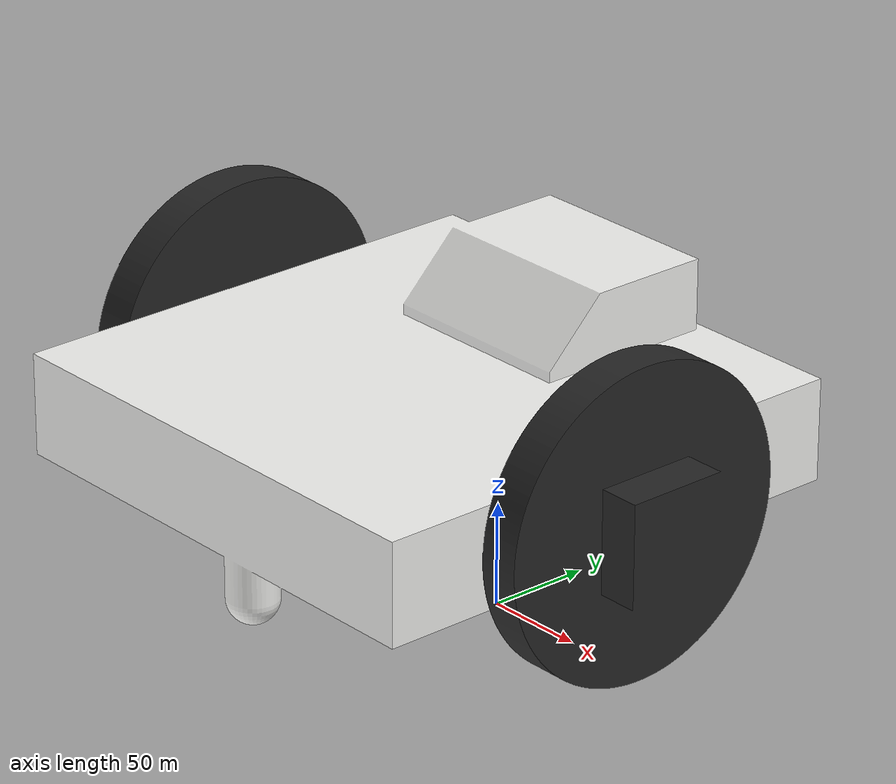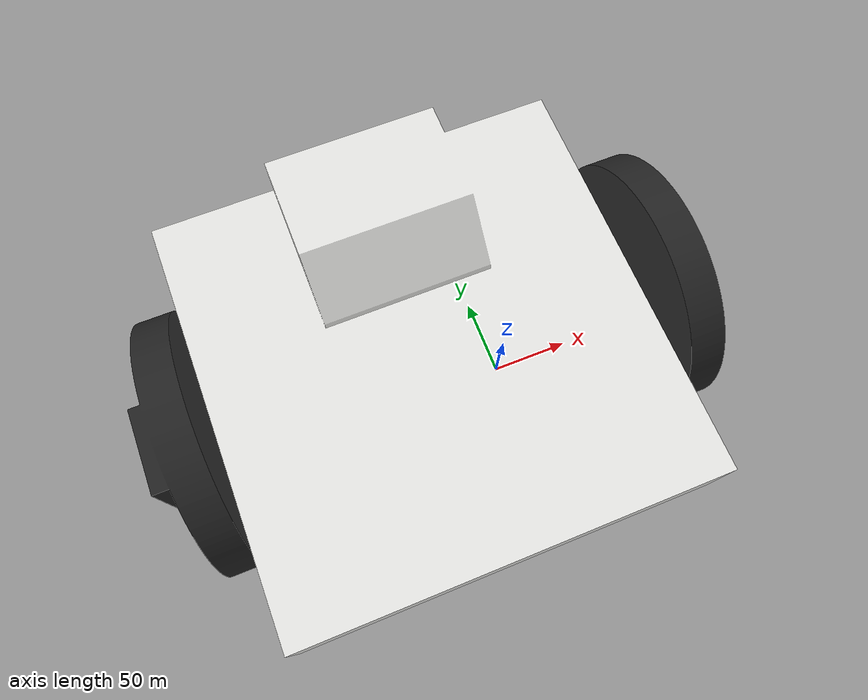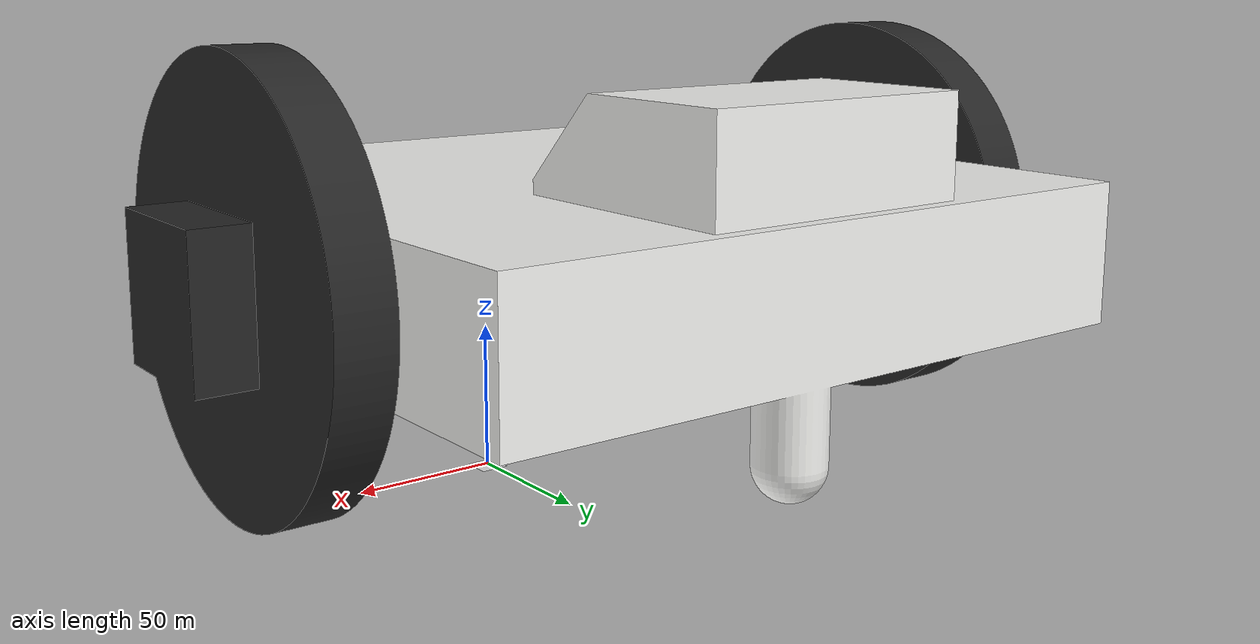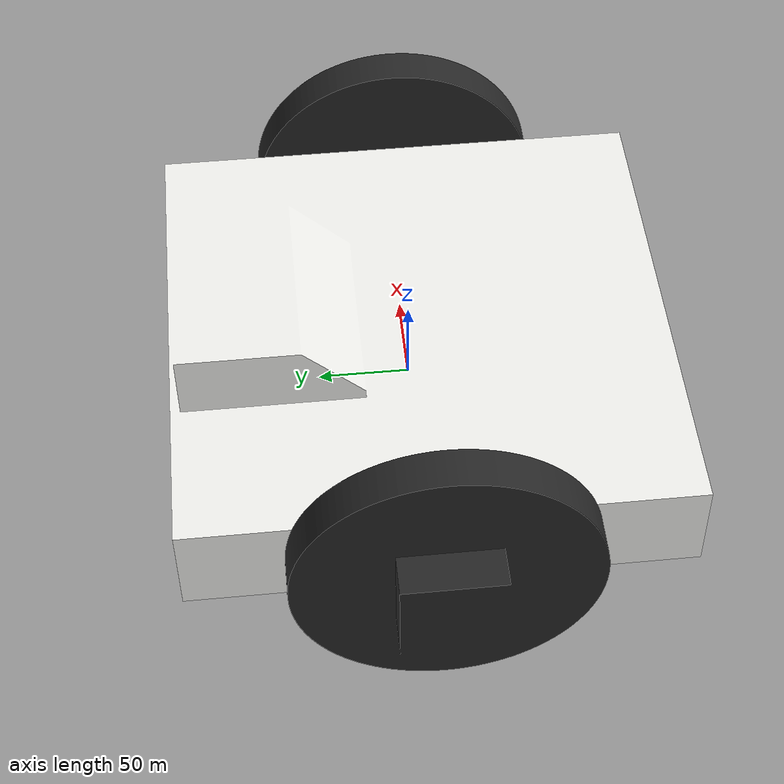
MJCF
<?xml version='1.0' encoding='utf-8' ?>
<mujoco model="Simple2Wheel">
  <compiler angle="radian" meshdir="meshes" />
  <default>
    <motor ctrlrange="-1000 1000" gear="1" />
  </default>
  <visual>
    <headlight ambient=".4 .4 .4" diffuse=".8 .8 .8" specular="0.1 0.1 0.1" />
    <map znear="0.01" />
    <quality shadowsize="2048" />
  </visual>
  <asset>
    <mesh name="body_body" file="body_body.stl" />
    <mesh name="l_wheel_l_wheel" file="l_wheel_l_wheel.stl" />
    <mesh name="r_wheel_r_wheel" file="r_wheel_r_wheel.stl" />
    <texture
            type="skybox"
            builtin="gradient"
            rgb1="0.3 0.5 0.7"
            rgb2="0 0 0"
            width="512"
            height="3072"
        />
    <texture
            type="2d"
            name="groundplane"
            builtin="checker"
            mark="edge"
            rgb1="0.2 0.3 0.4"
            rgb2="0.1 0.2 0.3"
            markrgb="0.8 0.8 0.8"
            width="300"
            height="300"
        />
    <material
            name="groundplane"
            texture="groundplane"
            texuniform="true"
            texrepeat="5 5"
            reflectance="0.2"
        />
  </asset>
  <worldbody>
    <light directional="true" diffuse=".8 .8 .8" pos="0 0 10" dir="0 0 -1" />
    <geom name="floor" type="plane" size="5 5 0.1" rgba=".9 .9 .9 1" />
    <body name="root_adapter" pos="0 0 0" euler="1.5707963267948966 0 0">
      <body
                name="body_1"
                pos="0.000000 0.000000 0.000000"
                quat="1.000000 0.000000 0.000000 0.000000"
            >
        <geom
                    type="mesh"
                    mesh="body_body"
                    rgba="0.9647058823529412 0.9647058823529412 0.9529411764705882 1.0"
                />
        <body
                    name="l_wheel_1"
                    pos="0.000000 0.000000 0.000000"
                    quat="1.000000 0.000000 0.000000 0.000000"
                >
          <joint
                        name="Revolute_1"
                        type="hinge"
                        pos="75.000000 75.000000 0.000000"
                        axis="-1.000000 0.000000 0.000000"
                    />
          <geom
                        type="mesh"
                        mesh="l_wheel_l_wheel"
                        rgba="0.15294117647058825 0.15294117647058825 0.15294117647058825 1.0"
                    />
        </body>
        <body
                    name="r_wheel_1"
                    pos="0.000000 0.000000 0.000000"
                    quat="1.000000 0.000000 0.000000 0.000000"
                >
          <joint
                        name="Revolute_2"
                        type="hinge"
                        pos="-175.000000 75.000000 0.000000"
                        axis="1.000000 0.000000 0.000000"
                    />
          <geom
                        type="mesh"
                        mesh="r_wheel_r_wheel"
                        rgba="0.15294117647058825 0.15294117647058825 0.15294117647058825 1.0"
                    />
        </body>
      </body>
    </body>
  </worldbody>
  <actuator>
    <motor name="Revolute_1_motor" joint="Revolute_1" ctrlrange="-1000 1000" />
    <motor name="Revolute_2_motor" joint="Revolute_2" ctrlrange="-1000 1000" />
  </actuator>
  <sensor>
    <jointpos name="Revolute_1_pos_sensor" joint="Revolute_1" />
    <jointvel name="Revolute_1_vel_sensor" joint="Revolute_1" />
    <jointpos name="Revolute_2_pos_sensor" joint="Revolute_2" />
    <jointvel name="Revolute_2_vel_sensor" joint="Revolute_2" />
  </sensor>
</mujoco>
